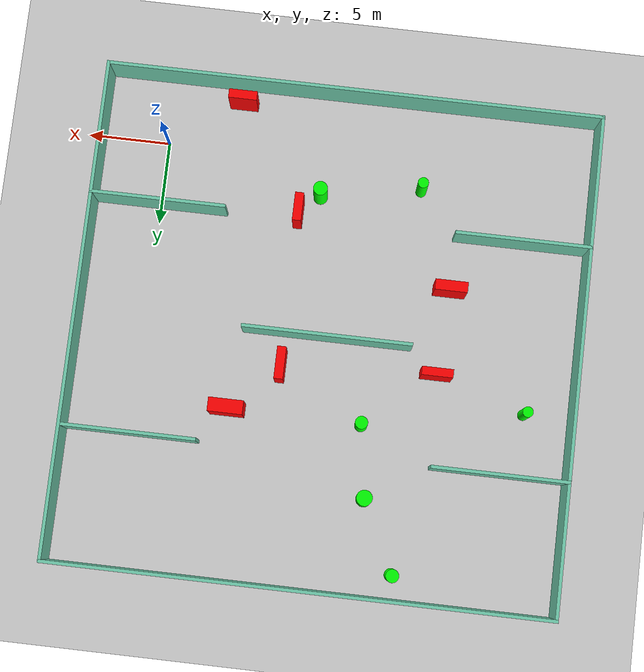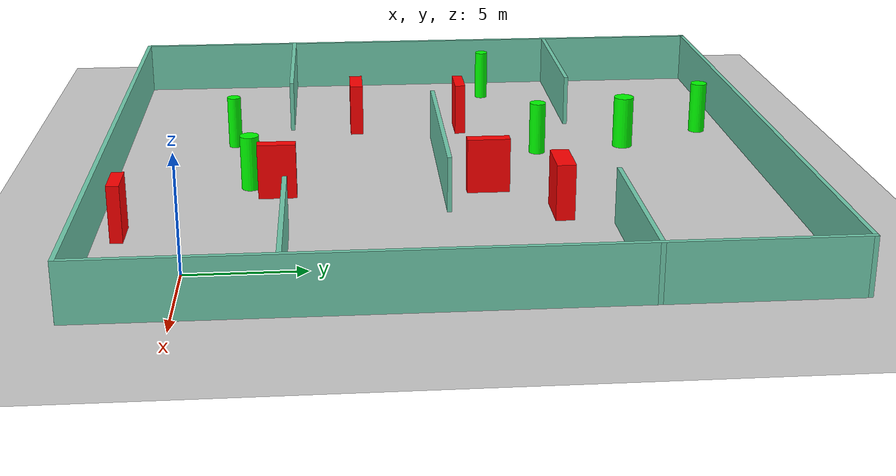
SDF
<sdf version="1.7">
 <world name="default">
  <light name="sun" type="directional">
   <pose>0 0 10 0 -0 0</pose>
   <diffuse>0.8 0.8 0.8 1</diffuse>
   <specular>0.2 0.2 0.2 1</specular>
   <attenuation>
    <range>1000</range>
    <constant>0.9</constant>
    <linear>0.01</linear>
    <quadratic>0.001</quadratic>
   </attenuation>
   <direction>-0.5 0.1 -0.9</direction>
   <spot><inner_angle>0</inner_angle><outer_angle>0</outer_angle><falloff>0</falloff></spot>
  </light>
  <model name="ground_plane">
   <static>1</static>
   <link name="link">
    <collision name="collision">
     <geometry><plane><normal>0 0 1</normal><size>100 100</size></plane></geometry>
     <surface>
      <contact><collide_bitmask>65535</collide_bitmask></contact>
      <friction><ode><mu>100</mu><mu2>50</mu2></ode></friction>
     </surface>
    </collision>
    <visual name="visual">
     <cast_shadows>0</cast_shadows>
     <geometry><plane><normal>0 0 1</normal><size>100 100</size></plane></geometry>
     <material>
      <script><uri>file://media/materials/scripts/gazebo.material</uri><name>Gazebo/Grey</name></script>
     </material>
    </visual>
   </link>
  </model>
  <gravity>0 0 -9.8</gravity>
  <magnetic_field>6e-06 2.3e-05 -4.2e-05</magnetic_field>
  <atmosphere type="adiabatic"/>
  <physics type="ode">
   <max_step_size>0.001</max_step_size>
   <real_time_factor>1</real_time_factor>
   <real_time_update_rate>1000</real_time_update_rate>
  </physics>
  <scene><ambient>0.4 0.4 0.4 1</ambient><background>0.7 0.7 0.7 1</background><shadows>1</shadows></scene>
  <spherical_coordinates>
   <surface_model>EARTH_WGS84</surface_model>
   <latitude_deg>0</latitude_deg>
   <longitude_deg>0</longitude_deg>
   <elevation>0</elevation>
   <heading_deg>0</heading_deg>
  </spherical_coordinates>
  <model name="my_base_walls">
   <link name="Wall_10">
    <collision name="Wall_10_Collision">
     <geometry><box><size>8.2 0.2 2.5</size></box></geometry>
     <pose>0 0 1.25 0 -0 0</pose>
    </collision>
    <visual name="Wall_10_Visual">
     <pose>0 0 1.25 0 -0 0</pose>
     <geometry><box><size>8.2 0.2 2.5</size></box></geometry>
     <material>
      <script><uri>file://media/materials/scripts/gazebo.material</uri><name>Gazebo/Grey</name></script>
      <ambient>0.435294 0.796078 0.67451 1</ambient>
     </material>
     <meta><layer>0</layer></meta>
    </visual>
    <pose>-11 -7 0 0 -0 0</pose>
   </link>
   <link name="Wall_12">
    <collision name="Wall_12_Collision">
     <geometry><box><size>8.2 0.2 2.5</size></box></geometry>
     <pose>0 0 1.25 0 -0 0</pose>
    </collision>
    <visual name="Wall_12_Visual">
     <pose>0 0 1.25 0 -0 0</pose>
     <geometry><box><size>8.2 0.2 2.5</size></box></geometry>
     <material>
      <script><uri>file://media/materials/scripts/gazebo.material</uri><name>Gazebo/Grey</name></script>
      <ambient>0.435294 0.796078 0.67451 1</ambient>
     </material>
     <meta><layer>0</layer></meta>
    </visual>
    <pose>-11 7 0 0 -0 0</pose>
   </link>
   <link name="Wall_14">
    <collision name="Wall_14_Collision">
     <geometry><box><size>8.2 0.2 2.5</size></box></geometry>
     <pose>0 0 1.25 0 -0 0</pose>
    </collision>
    <visual name="Wall_14_Visual">
     <pose>0 0 1.25 0 -0 0</pose>
     <geometry><box><size>8.2 0.2 2.5</size></box></geometry>
     <material>
      <script><uri>file://media/materials/scripts/gazebo.material</uri><name>Gazebo/Grey</name></script>
      <ambient>0.435294 0.796078 0.67451 1</ambient>
     </material>
     <meta><layer>0</layer></meta>
    </visual>
    <pose>11 7 0 0 -0 3.14159</pose>
   </link>
   <link name="Wall_16">
    <collision name="Wall_16_Collision">
     <geometry><box><size>10.2 0.2 2.5</size></box></geometry>
     <pose>0 0 1.25 0 -0 0</pose>
    </collision>
    <visual name="Wall_16_Visual">
     <pose>0 0 1.25 0 -0 0</pose>
     <geometry><box><size>10.2 0.2 2.5</size></box></geometry>
     <material>
      <script><uri>file://media/materials/scripts/gazebo.material</uri><name>Gazebo/Grey</name></script>
      <ambient>0.435294 0.796078 0.67451 1</ambient>
     </material>
     <meta><layer>0</layer></meta>
    </visual>
    <pose>0 0 0 0 -0 3.14159</pose>
   </link>
   <link name="Wall_2">
    <collision name="Wall_2_Collision">
     <geometry><box><size>30.2 0.2 2.5</size></box></geometry>
     <pose>0 0 1.25 0 -0 0</pose>
    </collision>
    <visual name="Wall_2_Visual">
     <pose>0 0 1.25 0 -0 0</pose>
     <geometry><box><size>30.2 0.2 2.5</size></box></geometry>
     <material>
      <script><uri>file://media/materials/scripts/gazebo.material</uri><name>Gazebo/Grey</name></script>
      <ambient>0.435294 0.796078 0.67451 1</ambient>
     </material>
     <meta><layer>0</layer></meta>
    </visual>
    <pose>0 -15 0 0 -0 3.14159</pose>
   </link>
   <link name="Wall_3">
    <collision name="Wall_3_Collision">
     <geometry><box><size>30.2 0.2 2.5</size></box></geometry>
     <pose>0 0 1.25 0 -0 0</pose>
    </collision>
    <visual name="Wall_3_Visual">
     <pose>0 0 1.25 0 -0 0</pose>
     <geometry><box><size>30.2 0.2 2.5</size></box></geometry>
     <material>
      <script><uri>file://media/materials/scripts/gazebo.material</uri><name>Gazebo/Grey</name></script>
      <ambient>0.435294 0.796078 0.67451 1</ambient>
     </material>
     <meta><layer>0</layer></meta>
    </visual>
    <pose>-15 0 0 0 -0 1.5708</pose>
   </link>
   <link name="Wall_4">
    <collision name="Wall_4_Collision">
     <geometry><box><size>30.2 0.2 2.5</size></box></geometry>
     <pose>0 0 1.25 0 -0 0</pose>
    </collision>
    <visual name="Wall_4_Visual">
     <pose>0 0 1.25 0 -0 0</pose>
     <geometry><box><size>30.2 0.2 2.5</size></box></geometry>
     <material>
      <script><uri>file://media/materials/scripts/gazebo.material</uri><name>Gazebo/Grey</name></script>
      <ambient>0.435294 0.796078 0.67451 1</ambient>
     </material>
     <meta><layer>0</layer></meta>
    </visual>
    <pose>0 15 0 0 -0 0</pose>
   </link>
   <link name="Wall_6">
    <collision name="Wall_6_Collision">
     <geometry><box><size>30.2 0.2 2.5</size></box></geometry>
     <pose>0 0 1.25 0 -0 0</pose>
    </collision>
    <visual name="Wall_6_Visual">
     <pose>0 0 1.25 0 -0 0</pose>
     <geometry><box><size>30.2 0.2 2.5</size></box></geometry>
     <material>
      <script><uri>file://media/materials/scripts/gazebo.material</uri><name>Gazebo/Grey</name></script>
      <ambient>0.435294 0.796078 0.67451 1</ambient>
     </material>
     <meta><layer>0</layer></meta>
    </visual>
    <pose>15 0 0 0 -0 1.5708</pose>
   </link>
   <link name="Wall_8">
    <collision name="Wall_8_Collision">
     <geometry><box><size>8.2 0.2 2.5</size></box></geometry>
     <pose>0 0 1.25 0 -0 0</pose>
    </collision>
    <visual name="Wall_8_Visual">
     <pose>0 0 1.25 0 -0 0</pose>
     <geometry><box><size>8.2 0.2 2.5</size></box></geometry>
     <material>
      <script><uri>file://media/materials/scripts/gazebo.material</uri><name>Gazebo/Grey</name></script>
      <ambient>0.435294 0.796078 0.67451 1</ambient>
     </material>
     <meta><layer>0</layer></meta>
    </visual>
    <pose>11 -7 0 0 -0 3.14159</pose>
   </link>
   <static>1</static>
   <pose>-11 11 0 0 -0 0</pose>
  </model>
  <model name="cylinder1">
   <static>1</static>
   <link name="link">
    <inertial>
     <mass>1</mass>
     <inertia><ixx>0.5</ixx><ixy>0</ixy><ixz>0</ixz><iyy>0.5</iyy><iyz>0</iyz><izz>1</izz></inertia>
    </inertial>
    <collision name="collision">
     <geometry><cylinder><radius>0.4302589833299999</radius><length>2.5</length></cylinder></geometry>
    </collision>
    <visual name="visual">
     <geometry><cylinder><radius>0.4302589833299999</radius><length>2.5</length></cylinder></geometry>
     <material>
      <ambient>0 1 0 1</ambient>
      <diffuse>0 1 0 1</diffuse>
      <specular>0.1 0.1 0.1 1</specular>
      <emissive>0 0 0 0</emissive>
     </material>
    </visual>
   </link>
   <pose>-9.61192531191369 2.2844215380239374 1.25 0 0 0</pose>
  </model>
  <model name="cylinder2">
   <static>1</static>
   <link name="link">
    <inertial>
     <mass>1</mass>
     <inertia><ixx>0.5</ixx><ixy>0</ixy><ixz>0</ixz><iyy>0.5</iyy><iyz>0</iyz><izz>1</izz></inertia>
    </inertial>
    <collision name="collision">
     <geometry><cylinder><radius>0.32156886990583344</radius><length>2.5</length></cylinder></geometry>
    </collision>
    <visual name="visual">
     <geometry><cylinder><radius>0.32156886990583344</radius><length>2.5</length></cylinder></geometry>
     <material>
      <ambient>0 1 0 1</ambient>
      <diffuse>0 1 0 1</diffuse>
      <specular>0.1 0.1 0.1 1</specular>
      <emissive>0 0 0 0</emissive>
     </material>
    </visual>
   </link>
   <pose>-15.680910847589985 1.2428856843860911 1.25 0 0 0</pose>
  </model>
  <model name="cylinder3">
   <static>1</static>
   <link name="link">
    <inertial>
     <mass>1</mass>
     <inertia><ixx>0.5</ixx><ixy>0</ixy><ixz>0</ixz><iyy>0.5</iyy><iyz>0</iyz><izz>1</izz></inertia>
    </inertial>
    <collision name="collision">
     <geometry><cylinder><radius>0.3946247403171979</radius><length>2.5</length></cylinder></geometry>
    </collision>
    <visual name="visual">
     <geometry><cylinder><radius>0.3946247403171979</radius><length>2.5</length></cylinder></geometry>
     <material>
      <ambient>0 1 0 1</ambient>
      <diffuse>0 1 0 1</diffuse>
      <specular>0.1 0.1 0.1 1</specular>
      <emissive>0 0 0 0</emissive>
     </material>
    </visual>
   </link>
   <pose>-16.34913280436285 24.518279221757794 1.25 0 0 0</pose>
  </model>
  <model name="cylinder4">
   <static>1</static>
   <link name="link">
    <inertial>
     <mass>1</mass>
     <inertia><ixx>0.5</ixx><ixy>0</ixy><ixz>0</ixz><iyy>0.5</iyy><iyz>0</iyz><izz>1</izz></inertia>
    </inertial>
    <collision name="collision">
     <geometry><cylinder><radius>0.4754995244787993</radius><length>2.5</length></cylinder></geometry>
    </collision>
    <visual name="visual">
     <geometry><cylinder><radius>0.4754995244787993</radius><length>2.5</length></cylinder></geometry>
     <material>
      <ambient>0 1 0 1</ambient>
      <diffuse>0 1 0 1</diffuse>
      <specular>0.1 0.1 0.1 1</specular>
      <emissive>0 0 0 0</emissive>
     </material>
    </visual>
   </link>
   <pose>-14.261034959856808 20.263471139669875 1.25 0 0 0</pose>
  </model>
  <model name="cylinder5">
   <static>1</static>
   <link name="link">
    <inertial>
     <mass>1</mass>
     <inertia><ixx>0.5</ixx><ixy>0</ixy><ixz>0</ixz><iyy>0.5</iyy><iyz>0</iyz><izz>1</izz></inertia>
    </inertial>
    <collision name="collision">
     <geometry><cylinder><radius>0.3822543392355558</radius><length>2.5</length></cylinder></geometry>
    </collision>
    <visual name="visual">
     <geometry><cylinder><radius>0.3822543392355558</radius><length>2.5</length></cylinder></geometry>
     <material>
      <ambient>0 1 0 1</ambient>
      <diffuse>0 1 0 1</diffuse>
      <specular>0.1 0.1 0.1 1</specular>
      <emissive>0 0 0 0</emissive>
     </material>
    </visual>
   </link>
   <pose>-13.608303026262908 15.921371785887281 1.25 0 0 0</pose>
  </model>
  <model name="cylinder6">
   <static>1</static>
   <link name="link">
    <inertial>
     <mass>1</mass>
     <inertia><ixx>0.5</ixx><ixy>0</ixy><ixz>0</ixz><iyy>0.5</iyy><iyz>0</iyz><izz>1</izz></inertia>
    </inertial>
    <collision name="collision">
     <geometry><cylinder><radius>0.3208235170484813</radius><length>2.5</length></cylinder></geometry>
    </collision>
    <visual name="visual">
     <geometry><cylinder><radius>0.3208235170484813</radius><length>2.5</length></cylinder></geometry>
     <material>
      <ambient>0 1 0 1</ambient>
      <diffuse>0 1 0 1</diffuse>
      <specular>0.1 0.1 0.1 1</specular>
      <emissive>0 0 0 0</emissive>
     </material>
    </visual>
   </link>
   <pose>-23.210053788419764 14.189774691669097 1.25 0 0 0</pose>
  </model>
  <model name="box1">
   <static>1</static>
   <link name="link">
    <inertial>
     <mass>1</mass>
     <inertia><ixx>0.083</ixx><ixy>0</ixy><ixz>0</ixz><iyy>0.083</iyy><iyz>0</iyz><izz>0.083</izz></inertia>
    </inertial>
    <collision name="collision">
     <geometry><box><size>0.5421583695874729 1.9295301200549246 2.5</size></box></geometry>
    </collision>
    <visual name="visual">
     <geometry><box><size>0.5421583695874729 1.9295301200549246 2.5</size></box></geometry>
     <material>
      <ambient>1 0 0 1</ambient>
      <diffuse>1 0 0 1</diffuse>
      <specular>0.1 0.1 0.1 1</specular>
      <emissive>0 0 0 0</emissive>
     </material>
    </visual>
    <sensor name="my_contact" type="contact">
     <contact><collision>box_collision</collision><topic>__default_topic__</topic></contact>
    </sensor>
   </link>
   <pose>-8.452233838650276 12.95373167543812 1.25 0 0 0</pose>
  </model>
  <model name="box2">
   <static>1</static>
   <link name="link">
    <inertial>
     <mass>1</mass>
     <inertia><ixx>0.083</ixx><ixy>0</ixy><ixz>0</ixz><iyy>0.083</iyy><iyz>0</iyz><izz>0.083</izz></inertia>
    </inertial>
    <collision name="collision">
     <geometry><box><size>1.7122392137422544 0.5367752705750973 2.5</size></box></geometry>
    </collision>
    <visual name="visual">
     <geometry><box><size>1.7122392137422544 0.5367752705750973 2.5</size></box></geometry>
     <material>
      <ambient>1 0 0 1</ambient>
      <diffuse>1 0 0 1</diffuse>
      <specular>0.1 0.1 0.1 1</specular>
      <emissive>0 0 0 0</emissive>
     </material>
    </visual>
    <sensor name="my_contact" type="contact">
     <contact><collision>box_collision</collision><topic>__default_topic__</topic></contact>
    </sensor>
   </link>
   <pose>-4.303365157476824 -2.927380616941526 1.25 0 0 0</pose>
  </model>
  <model name="box3">
   <static>1</static>
   <link name="link">
    <inertial>
     <mass>1</mass>
     <inertia><ixx>0.083</ixx><ixy>0</ixy><ixz>0</ixz><iyy>0.083</iyy><iyz>0</iyz><izz>0.083</izz></inertia>
    </inertial>
    <collision name="collision">
     <geometry><box><size>2.077668373265567 0.8289799863828492 2.5</size></box></geometry>
    </collision>
    <visual name="visual">
     <geometry><box><size>2.077668373265567 0.8289799863828492 2.5</size></box></geometry>
     <material>
      <ambient>1 0 0 1</ambient>
      <diffuse>1 0 0 1</diffuse>
      <specular>0.1 0.1 0.1 1</specular>
      <emissive>0 0 0 0</emissive>
     </material>
    </visual>
    <sensor name="my_contact" type="contact">
     <contact><collision>box_collision</collision><topic>__default_topic__</topic></contact>
    </sensor>
   </link>
   <pose>-5.568131609939368 15.849394533240233 1.25 0 0 0</pose>
  </model>
  <model name="box4">
   <static>1</static>
   <link name="link">
    <inertial>
     <mass>1</mass>
     <inertia><ixx>0.083</ixx><ixy>0</ixy><ixz>0</ixz><iyy>0.083</iyy><iyz>0</iyz><izz>0.083</izz></inertia>
    </inertial>
    <collision name="collision">
     <geometry><box><size>0.5326962788640961 1.705832726349038 2.5</size></box></geometry>
    </collision>
    <visual name="visual">
     <geometry><box><size>0.5326962788640961 1.705832726349038 2.5</size></box></geometry>
     <material>
      <ambient>1 0 0 1</ambient>
      <diffuse>1 0 0 1</diffuse>
      <specular>0.1 0.1 0.1 1</specular>
      <emissive>0 0 0 0</emissive>
     </material>
    </visual>
    <sensor name="my_contact" type="contact">
     <contact><collision>box_collision</collision><topic>__default_topic__</topic></contact>
    </sensor>
   </link>
   <pose>-8.408417623780833 3.524215157118168 1.25 0 0 0</pose>
  </model>
  <model name="box5">
   <static>1</static>
   <link name="link">
    <inertial>
     <mass>1</mass>
     <inertia><ixx>0.083</ixx><ixy>0</ixy><ixz>0</ixz><iyy>0.083</iyy><iyz>0</iyz><izz>0.083</izz></inertia>
    </inertial>
    <collision name="collision">
     <geometry><box><size>1.9508590475356866 0.6261168909045407 2.5</size></box></geometry>
    </collision>
    <visual name="visual">
     <geometry><box><size>1.9508590475356866 0.6261168909045407 2.5</size></box></geometry>
     <material>
      <ambient>1 0 0 1</ambient>
      <diffuse>1 0 0 1</diffuse>
      <specular>0.1 0.1 0.1 1</specular>
      <emissive>0 0 0 0</emissive>
     </material>
    </visual>
    <sensor name="my_contact" type="contact">
     <contact><collision>box_collision</collision><topic>__default_topic__</topic></contact>
    </sensor>
   </link>
   <pose>-18.004296262953865 7.249308412050963 1.25 0 0 0</pose>
  </model>
  <model name="box6">
   <static>1</static>
   <link name="link">
    <inertial>
     <mass>1</mass>
     <inertia><ixx>0.083</ixx><ixy>0</ixy><ixz>0</ixz><iyy>0.083</iyy><iyz>0</iyz><izz>0.083</izz></inertia>
    </inertial>
    <collision name="collision">
     <geometry><box><size>1.8753834911590062 0.5060584158504632 2.5</size></box></geometry>
    </collision>
    <visual name="visual">
     <geometry><box><size>1.8753834911590062 0.5060584158504632 2.5</size></box></geometry>
     <material>
      <ambient>1 0 0 1</ambient>
      <diffuse>1 0 0 1</diffuse>
      <specular>0.1 0.1 0.1 1</specular>
      <emissive>0 0 0 0</emissive>
     </material>
    </visual>
    <sensor name="my_contact" type="contact">
     <contact><collision>box_collision</collision><topic>__default_topic__</topic></contact>
    </sensor>
   </link>
   <pose>-17.718464602428615 12.449911496121134 1.25 0 0 0</pose>
  </model>
 </world>
</sdf>
